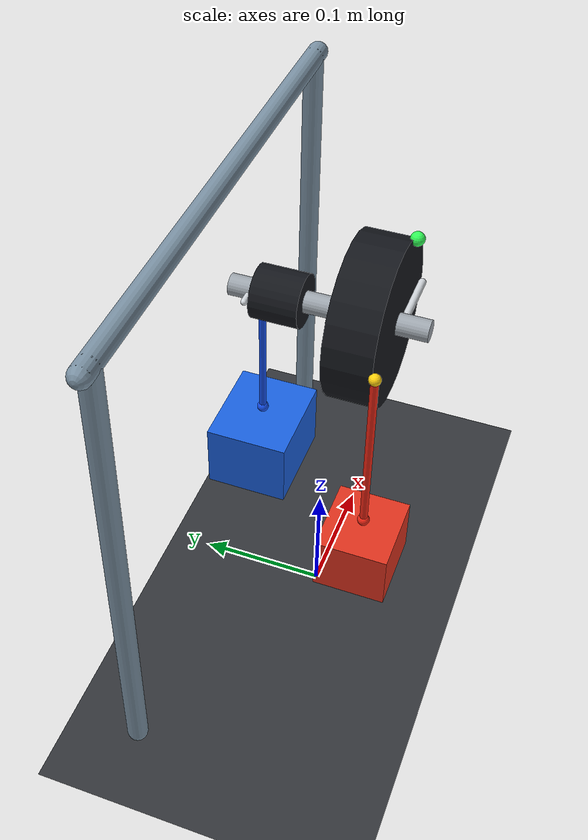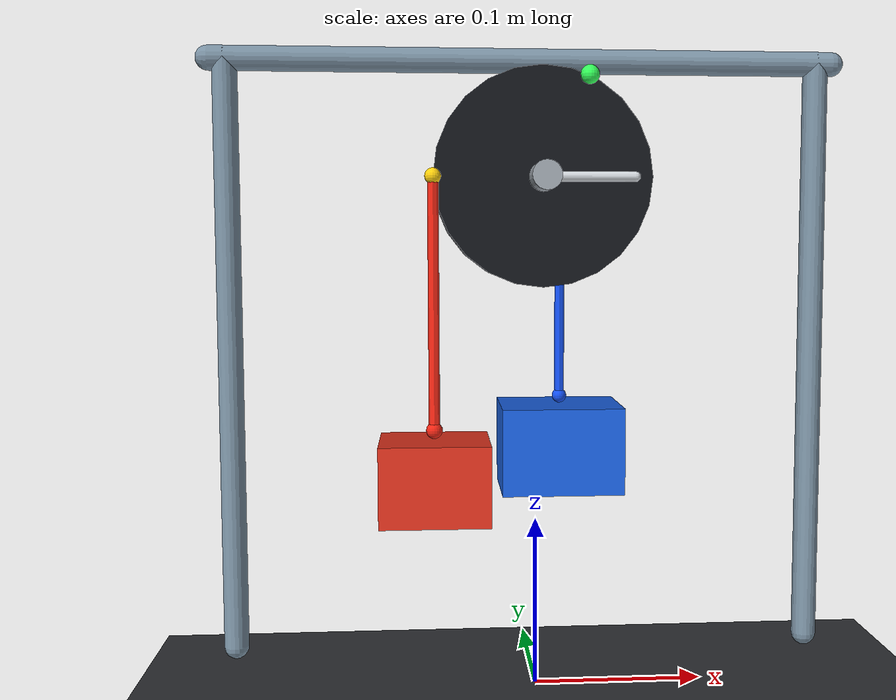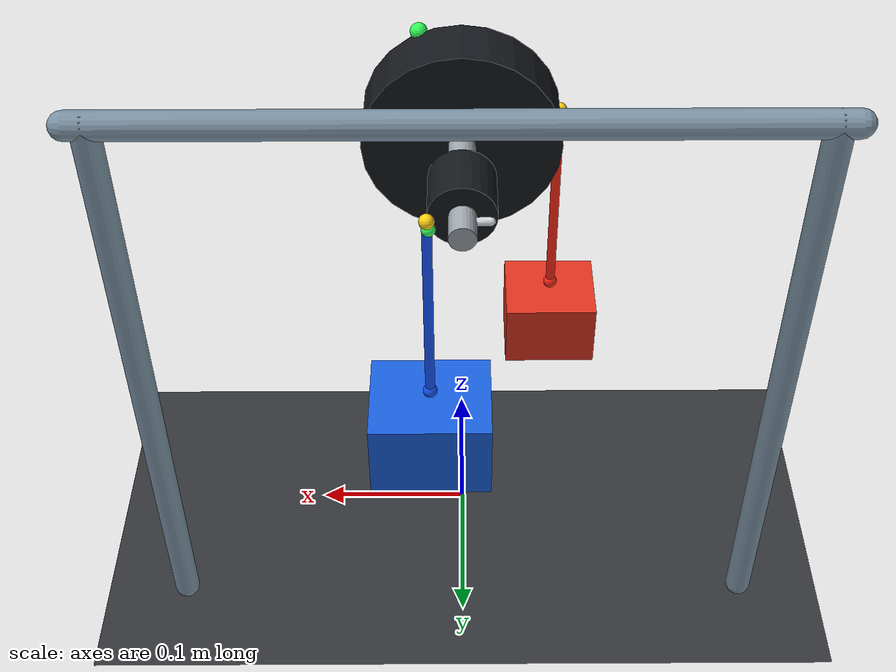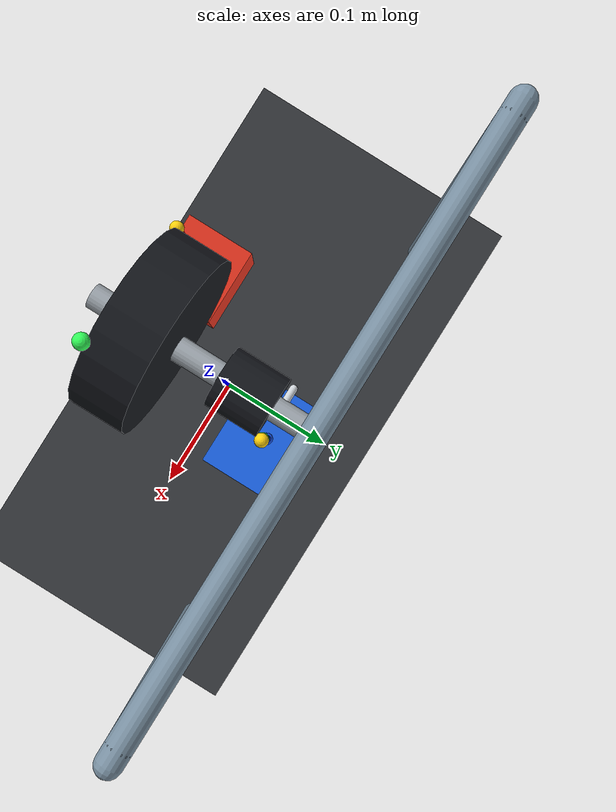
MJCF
<mujoco model="cable_demo_wheel_axle_force_amplifier">
  <compiler autolimits="true" angle="radian" />
  <option timestep="0.0005" gravity="0 0 -9.81" integrator="implicitfast" />

  <custom>
    <text name="spool_debug_large"
          data="large_drum_input_cable large_input_drum large_drum_fixed large_drum_exit large_drum_input" />
    <text name="spool_debug_small"
          data="small_drum_output_cable small_output_drum small_drum_fixed small_drum_exit small_drum_output" />
  </custom>

  <extension>
    <plugin plugin="mujoco.cable.unilateral">
      <instance name="large_drum_input_cable">
        <config key="stiffness" value="8000" />
        <config key="damping" value="20" />
        <config key="slack" value="0" />
        <config key="home_length" value="auto_initial" />
        <config key="pretension_offset" value="0.0000981" />
        <config key="max_tension" value="20" />
        <config key="ctrl_mode" value="joint_spool_angle" />
        <config key="spool_radius" value="0.060" />
        <config key="spool_joint" value="compound_drum_hinge" />
        <config key="spool_reserve_length" value="0.12" />
        <config key="spool_reserve_direction" value="positive" />
        <config key="spool_reaction_torque" value="true" />
      </instance>
      <instance name="small_drum_output_cable">
        <config key="stiffness" value="8000" />
        <config key="damping" value="20" />
        <config key="slack" value="0" />
        <config key="home_length" value="auto_initial" />
        <config key="pretension_offset" value="0.0002943" />
        <config key="max_tension" value="20" />
        <config key="ctrl_mode" value="joint_spool_angle" />
        <config key="spool_radius" value="0.020" />
        <config key="spool_joint" value="compound_drum_hinge" />
        <config key="spool_reserve_length" value="0.12" />
        <config key="spool_reserve_direction" value="negative" />
        <config key="spool_reaction_torque" value="true" />
      </instance>
    </plugin>
  </extension>

  <default>
    <joint damping="2.0" armature="0.001" />
    <geom friction="0.8 0.05 0.01" />
  </default>

  <asset>
    <texture name="grid_texture" type="2d" builtin="checker"
             rgb1="0.16 0.17 0.18" rgb2="0.24 0.25 0.27"
             width="512" height="512" />
    <material name="grid_material" texture="grid_texture"
              texrepeat="8 8" reflectance="0.08" />
    <material name="frame_material" rgba="0.48 0.57 0.64 1" />
    <material name="drum_material" rgba="0.08 0.09 0.11 1" />
    <material name="input_material" rgba="0.88 0.20 0.12 1" />
    <material name="output_material" rgba="0.10 0.38 0.88 1" />
  </asset>

  <worldbody>
    <light name="key" pos="-0.35 -0.8 0.85" dir="0.25 0.75 -0.65" />
    <camera name="overview" pos="0.42 -0.88 0.43"
            xyaxes="0.90 0.43 0 -0.17 0.35 0.92" />

    <geom name="floor" type="plane" pos="0 0 -0.01"
          size="0.55 0.42 0.01" material="grid_material" />
    <geom name="left_frame" type="capsule"
          fromto="-0.19 0.08 0 -0.19 0.08 0.38"
          size="0.008" material="frame_material"
          contype="0" conaffinity="0" />
    <geom name="right_frame" type="capsule"
          fromto="0.19 0.08 0 0.19 0.08 0.38"
          size="0.008" material="frame_material"
          contype="0" conaffinity="0" />
    <geom name="top_frame" type="capsule"
          fromto="-0.20 0.08 0.38 0.20 0.08 0.38"
          size="0.008" material="frame_material"
          contype="0" conaffinity="0" />

    <!-- USER TUNING: world-fixed tangent exits of the free cable spans. -->
    <site name="large_drum_exit" pos="-0.060 -0.052 0.300"
          size="0.0045" rgba="1 0.82 0.05 1" />
    <site name="small_drum_exit" pos="0.020 0.057 0.300"
          size="0.0045" rgba="1 0.82 0.05 1" />

    <body name="compound_drum" pos="0 0 0.300">
      <joint name="compound_drum_hinge" type="hinge" axis="0 1 0"
             damping="0.025" armature="0.0008" />
      <geom name="large_input_drum" type="cylinder"
            pos="0 -0.032 0" euler="1.57079632679 0 0"
            size="0.060 0.018" mass="0.10"
            material="drum_material" contype="0" conaffinity="0" />
      <geom name="small_output_drum" type="cylinder"
            pos="0 0.035 0" euler="1.57079632679 0 0"
            size="0.020 0.018" mass="0.025"
            material="drum_material" contype="0" conaffinity="0" />
      <geom name="shaft" type="cylinder"
            euler="1.57079632679 0 0" size="0.008 0.073"
            rgba="0.62 0.65 0.68 1" contype="0" conaffinity="0" />
      <geom name="large_spoke" type="capsule"
            fromto="0 -0.053 0 0.050 -0.053 0"
            size="0.0028" rgba="0.82 0.84 0.86 1"
            contype="0" conaffinity="0" />
      <geom name="small_spoke" type="capsule"
            fromto="0 0.057 0 -0.016 0.057 0"
            size="0.0024" rgba="0.82 0.84 0.86 1"
            contype="0" conaffinity="0" />

      <site name="large_drum_fixed"
            pos="0.024969 -0.052 0.054558"
            type="sphere" size="0.0052" rgba="0.20 1 0.35 1" />
      <site name="small_drum_fixed"
            pos="0.019203 0.057 -0.005588"
            type="sphere" size="0.0042" rgba="0.20 1 0.35 1" />
    </body>

    <body name="input_weight" pos="-0.060 -0.052 0.135">
      <joint name="input_slide" type="slide" axis="0 0 1"
             range="-0.080 0.080" />
      <geom name="input_mass" type="box" size="0.030 0.027 0.022"
            mass="0.080" material="input_material" />
      <site name="input_hook" pos="0 0 0.027"
            size="0.0045" rgba="0.95 0.15 0.08 1" />
    </body>

    <body name="output_load" pos="0.020 0.057 0.135">
      <joint name="output_slide" type="slide" axis="0 0 1"
             range="-0.080 0.080" />
      <geom name="output_mass" type="box" size="0.038 0.032 0.027"
            mass="0.240" material="output_material" />
      <site name="output_hook" pos="0 0 0.032"
            size="0.0045" rgba="0.08 0.32 0.95 1" />
    </body>
  </worldbody>

  <tendon>
    <spatial name="large_drum_input" limited="false" width="0.003"
             rgba="0.95 0.15 0.08 1">
      <site site="large_drum_exit" />
      <site site="input_hook" />
    </spatial>
    <spatial name="small_drum_output" limited="false" width="0.003"
             rgba="0.08 0.32 0.95 1">
      <site site="small_drum_exit" />
      <site site="output_hook" />
    </spatial>
  </tendon>

  <actuator>
    <plugin name="large_drum_input_cable_actuator"
            tendon="large_drum_input" instance="large_drum_input_cable" />
    <plugin name="small_drum_output_cable_actuator"
            tendon="small_drum_output" instance="small_drum_output_cable" />
    <motor name="input_pull" joint="input_slide" gear="-1"
           ctrllimited="true" ctrlrange="0 0.40" />
  </actuator>

  <sensor>
    <plugin name="large_drum_input_state"
            instance="large_drum_input_cable" />
    <plugin name="small_drum_output_state"
            instance="small_drum_output_cable" />
    <jointpos name="compound_drum_angle" joint="compound_drum_hinge" />
    <jointpos name="input_position" joint="input_slide" />
    <jointpos name="output_position" joint="output_slide" />
  </sensor>
</mujoco>
